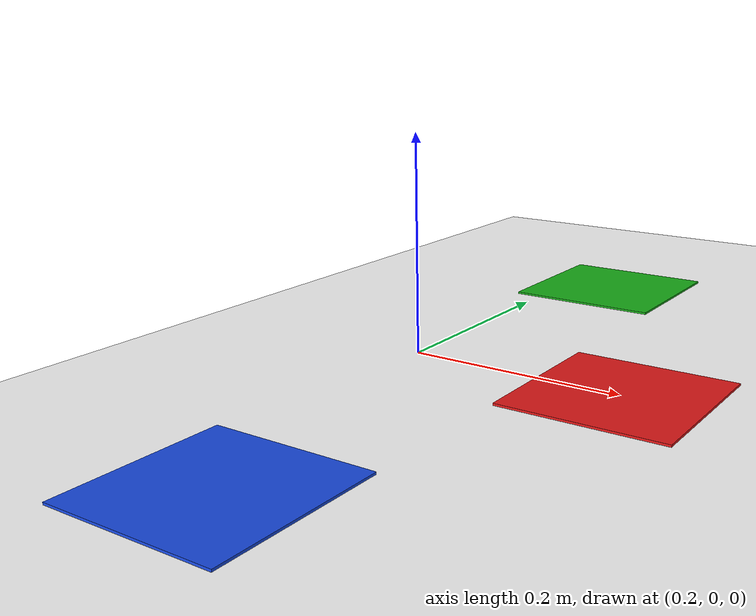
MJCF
<mujoco model="practice_zones">
  <compiler angle="degree" coordinate="local"/>
  <option timestep="0.001" iterations="20" solver="Newton" gravity="0 0 -9.81"/>

  <visual>
    <headlight diffuse="0.6 0.6 0.6" ambient="0.5 0.5 0.5" specular="0 0 0"/>
  </visual>

  <worldbody>
    <light pos="0 0 1.5" dir="0 0 -1"/>

    <!-- White floor — 1.5 × 1.5 m. -->
    <geom name="floor" type="plane" size="0.75 0.75 0.05"
          rgba="1 1 1 1" friction="0.9 0.02 0.0001"/>

    <!-- Coloured target zones. Thin (1 mm) slabs raised 1 mm so the
         downward raycast hits the slab, not the floor below. -->
    <geom name="zone_red" type="box"
          pos="0.40 0 0.001" size="0.075 0.075 0.001"
          rgba="0.9 0.1 0.1 1"/>
    <geom name="zone_green" type="box"
          pos="0.25 0.30 0.001" size="0.075 0.075 0.001"
          rgba="0.1 0.7 0.1 1"/>
    <geom name="zone_blue" type="box"
          pos="0.25 -0.30 0.001" size="0.075 0.075 0.001"
          rgba="0.1 0.3 0.9 1"/>
  </worldbody>
</mujoco>
